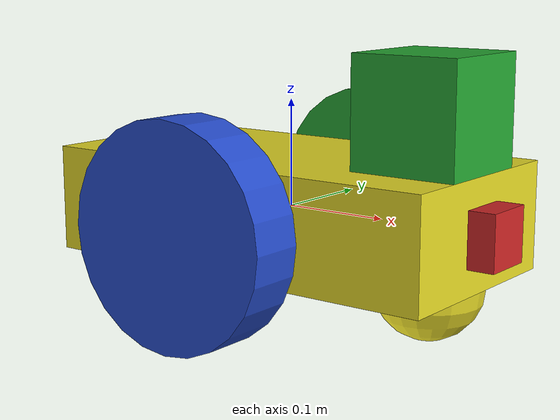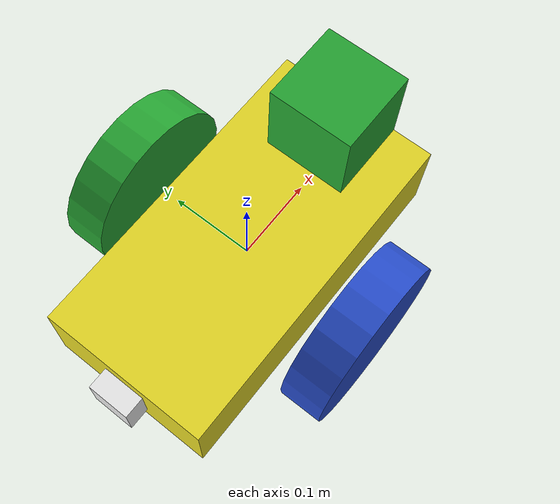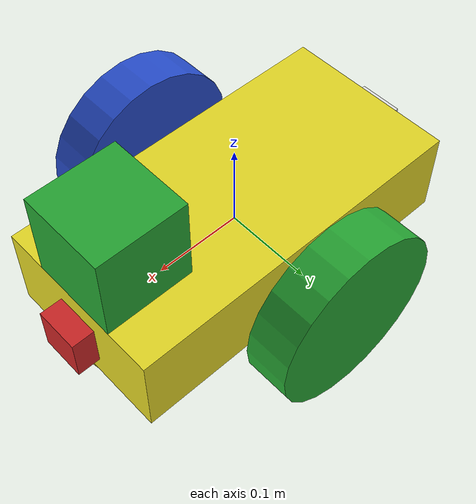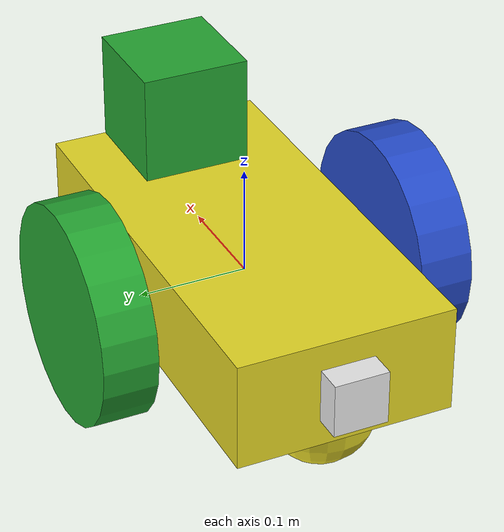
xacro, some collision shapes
<?xml version='1.0'?>

<robot name="my_robot" xmlns:xacro="http://www.ros.org/wiki/xacro">

  <xacro:include filename="$(find my_robot)/urdf/my_robot.gazebo" />

  <link name="robot_footprint"></link>

  <joint name="robot_footprint_joint" type="fixed">
    <origin xyz="0 0 0" rpy="0 0 0" />
    <parent link="robot_footprint"/>
    <child link="chassis" />
  </joint>

  <link name='chassis'>
    <pose>0 0 0.1 0 0 0</pose>

    <inertial>
      <mass value="15.0"/>
      <origin xyz="0.0 0 0" rpy=" 0 0 0"/>
      <inertia
          ixx="0.1" ixy="0" ixz="0"
          iyy="0.1" iyz="0"
          izz="0.1"
      />
    </inertial>

    <collision name='collision'>
      <origin xyz="0 0 0" rpy=" 0 0 0"/>
      <geometry>
        <box size=".4 .2 .1"/>
      </geometry>
    </collision>

    <visual name='chassis_visual'>
      <origin xyz="0 0 0" rpy=" 0 0 0"/>
      <geometry>
        <box size=".4 .2 .1"/>
      </geometry>
    </visual>

    <collision name='back_caster_collision'>
      <origin xyz="-0.15 0 -0.05" rpy=" 0 0 0"/>
      <geometry>
        <sphere radius="0.0499"/>
      </geometry>
    </collision>

    <visual name='back_caster_visual'>
      <origin xyz="-0.15 0 -0.05" rpy=" 0 0 0"/>
      <geometry>
        <sphere radius="0.05"/>
      </geometry>
    </visual>

    <collision name='front_caster_collision'>
      <origin xyz="0.15 0 -0.05" rpy=" 0 0 0"/>
      <geometry>
        <sphere radius="0.0499"/>
      </geometry>
    </collision>

    <visual name='front_caster_visual'>
      <origin xyz="0.15 0 -0.05" rpy=" 0 0 0"/>
      <geometry>
        <sphere radius="0.05"/>
      </geometry>
    </visual>

  </link>

  <link name="left_wheel">

    <visual name='left_wheel_visual'>
      <origin xyz="0 0 0" rpy=" 0 1.5707 1.5707"/>
      <geometry>
        <cylinder radius="0.1" length="0.05"/>
      </geometry>
    </visual>

    <collision name='left_wheel_collision'>
      <origin xyz="0 0 0" rpy=" 0 1.5707 1.5707"/>
      <geometry>
        <cylinder radius="0.1" length="0.05"/>
      </geometry>
    </collision>

    <inertial>
      <mass value="5.0"/>
      <origin xyz="0 0 0" rpy=" 0 1.5707 1.5707"/>
      <inertia
          ixx="0.1" ixy="0" ixz="0"
          iyy="0.1" iyz="0"
          izz="0.1"
      />
    </inertial>
  </link>

  <link name="right_wheel">

    <visual name='right_wheel_visual'>
      <origin xyz="0 0 0" rpy=" 0 1.5707 1.5707"/>
      <geometry>
        <cylinder radius="0.1" length="0.05"/>
      </geometry>
    </visual>

    <collision name='right_wheel_collision'>
      <origin xyz="0 0 0" rpy=" 0 1.5707 1.5707"/>
      <geometry>
        <cylinder radius="0.1" length="0.05"/>
      </geometry>
    </collision>

    <inertial>
      <mass value="5.0"/>
      <origin xyz="0 0 0" rpy=" 0 1.5707 1.5707"/>
      <inertia
          ixx="0.1" ixy="0" ixz="0"
          iyy="0.1" iyz="0"
          izz="0.1"
      />
    </inertial>
  </link>

  <joint type="continuous" name="left_wheel_hinge">
    <origin xyz="0.0 0.15 0" rpy="0 0 0"/>
    <child link="left_wheel"/>
    <parent link="chassis"/>
    <axis xyz="0 1 0" rpy="0 0 0"/>
    <limit effort="10000" velocity="1000"/>
    <dynamics damping="1.0" friction="1.0"/>
  </joint>

  <joint type="continuous" name="right_wheel_hinge">
    <origin xyz="0.0 -0.15 0" rpy="0 0 0"/>
    <child link="right_wheel"/>
    <parent link="chassis"/>
    <axis xyz="0 1 0" rpy="0 0 0"/>
    <limit effort="10000" velocity="1000"/>
    <dynamics damping="1.0" friction="1.0"/>
  </joint>

  <link name="camera">

    <visual name='camera_visual'>
      <origin xyz="0 0 0" rpy=" 0 0 0"/>
      <geometry>
        <box size="0.05 0.05 0.05"/>
      </geometry>
    </visual>

    <collision name='camera_collision'>
      <origin xyz="0 0 0" rpy=" 0 0 0"/>
      <geometry>
        <box size="0.05 0.05 0.05"/>
      </geometry>
    </collision>

    <inertial>
      <mass value="0.1"/>
      <origin xyz="0 0 0" rpy=" 0 0 0"/>
      <inertia
          ixx="1e-6" ixy="0" ixz="0"
          iyy="1e-6" iyz="0"
          izz="1e-6"
      />
    </inertial>
  </link>

  <joint type="fixed" name="camera_joint">
    <origin xyz="0.2 0 0" rpy="0 0 0"/>
    <child link="camera"/>
    <parent link="chassis"/>
    <axis xyz="0 1 0" rpy="0 0 0"/>
  </joint>

  <link name="back_camera">

    <visual name='back_camera_visual'>
      <origin xyz="0 0 0" rpy=" 0 0 0"/>
      <geometry>
        <box size="0.05 0.05 0.05"/>
      </geometry>
    </visual>

    <collision name='back_camera_collision'>
      <origin xyz="0 0 0" rpy=" 0 0 0"/>
      <geometry>
        <box size="0.05 0.05 0.05"/>
      </geometry>
    </collision>

    <inertial>
      <mass value="0.1"/>
      <origin xyz="0 0 0" rpy=" 0 0 0"/>
      <inertia
          ixx="1e-6" ixy="0" ixz="0"
          iyy="1e-6" iyz="0"
          izz="1e-6"
      />
    </inertial>
  </link>

  <joint type="fixed" name="back_camera_joint">
    <origin xyz="-0.2 0 0" rpy="0 0 3.141592"/>
    <child link="back_camera"/>
    <parent link="chassis"/>
    <axis xyz="0 1 0" rpy="0 0 0"/>
  </joint>

  <link name="hokuyo">

    <visual name='hokuyo_visual'>
      <origin xyz="0 0 0" rpy=" 0 0 0"/>
      <geometry>
        <mesh filename="package://my_robot/meshes/hokuyo.dae"/>
      </geometry>
      <material name="green"/>
    </visual>

    <collision name='hokuyo_collision'>
      <origin xyz="0 0 0" rpy=" 0 0 0"/>
      <geometry>
        <box size="0.1 0.1 0.1"/>
      </geometry>
    </collision>

    <inertial>
      <mass value="1e-5"/>
      <origin xyz="0 0 0" rpy=" 0 0 0"/>
      <inertia
          ixx="1e-6" ixy="0" ixz="0"
          iyy="1e-6" iyz="0"
          izz="1e-6"
      />
    </inertial>
  </link>

  <joint type="fixed" name="hokuyo_joint">
    <origin xyz="0.15 0 0.1" rpy="0 0 0"/>
    <child link="hokuyo"/>
    <parent link="chassis"/>
    <axis xyz="0 1 0" rpy="0 0 0"/>
  </joint>

  <gazebo reference="chassis">
    <material>Gazebo/Yellow</material>
  </gazebo>

  <gazebo reference="left_wheel">
    <material>Gazebo/Green</material>
  </gazebo>

  <gazebo reference="right_wheel">
    <material>Gazebo/Blue</material>
  </gazebo>

  <gazebo reference="camera">
    <material>Gazebo/Red</material>
  </gazebo>

  <gazebo reference="back_camera">
    <material>Gazebo/White</material>
  </gazebo>

</robot>
